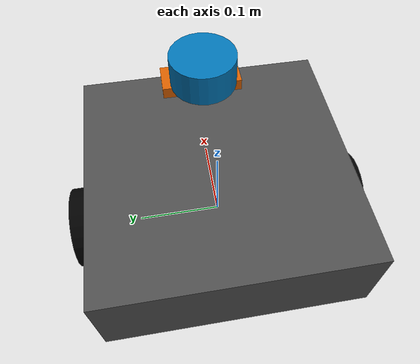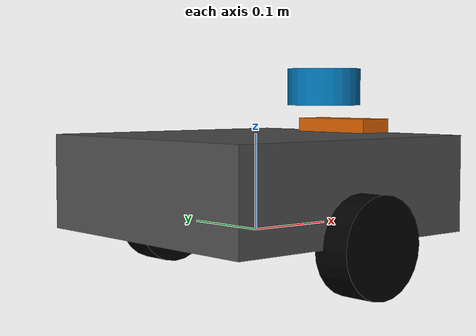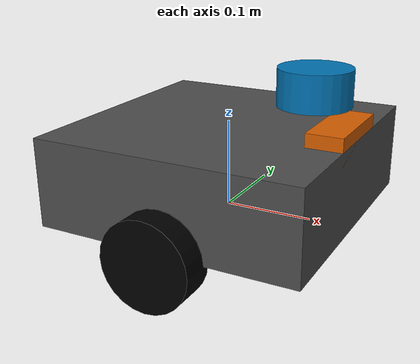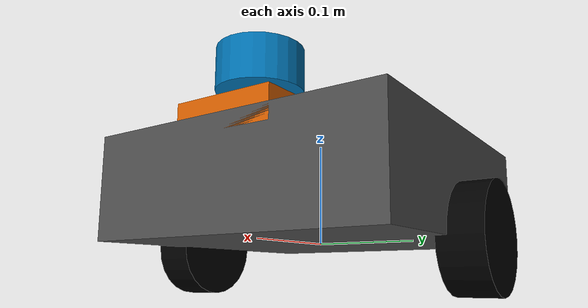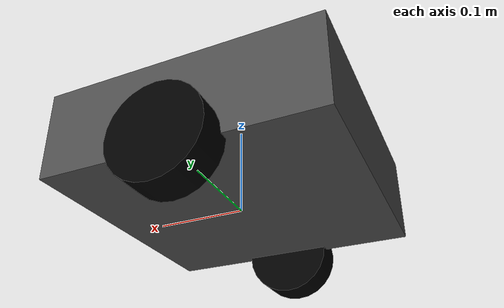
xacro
<?xml version="1.0"?>
<robot xmlns:xacro="http://ros.org/wiki/xacro" name="openbrain_sim_robot">

  <xacro:property name="wheel_radius" value="0.05"/>
  <xacro:property name="wheel_width"  value="0.04"/>
  <xacro:property name="wheel_y"      value="0.16"/>

  <link name="base_footprint"/>

  <joint name="base_to_footprint" type="fixed">
    <parent link="base_footprint"/>
    <child link="base_link"/>
    <origin xyz="0 0 ${wheel_radius}"/>
  </joint>

  <link name="base_link">
    <inertial><mass value="5.0"/><inertia ixx="0.05" iyy="0.05" izz="0.05" ixy="0" ixz="0" iyz="0"/></inertial>
    <visual><geometry><box size="0.30 0.30 0.10"/></geometry>
      <material name="grey"><color rgba="0.3 0.3 0.3 1"/></material></visual>
    <collision><geometry><box size="0.30 0.30 0.10"/></geometry></collision>
  </link>

  <xacro:macro name="wheel" params="prefix y">
    <link name="${prefix}_wheel">
      <inertial><mass value="0.5"/><inertia ixx="0.001" iyy="0.001" izz="0.001" ixy="0" ixz="0" iyz="0"/></inertial>
      <visual><geometry><cylinder radius="${wheel_radius}" length="${wheel_width}"/></geometry>
        <material name="black"><color rgba="0 0 0 1"/></material></visual>
      <collision><geometry><cylinder radius="${wheel_radius}" length="${wheel_width}"/></geometry></collision>
    </link>
    <joint name="${prefix}_wheel_joint" type="continuous">
      <parent link="base_link"/>
      <child link="${prefix}_wheel"/>
      <origin xyz="0 ${y} -0.05" rpy="-1.5708 0 0"/>
      <axis xyz="0 0 1"/>
    </joint>
  </xacro:macro>

  <xacro:wheel prefix="left"  y="${wheel_y}"/>
  <xacro:wheel prefix="right" y="-${wheel_y}"/>

  <!-- 2D lidar -->
  <link name="lidar_link"><inertial><mass value="0.1"/><inertia ixx="0.001" iyy="0.001" izz="0.001" ixy="0" ixz="0" iyz="0"/></inertial>
    <visual><geometry><cylinder radius="0.04" length="0.04"/></geometry></visual></link>
  <joint name="lidar_joint" type="fixed"><parent link="base_link"/><child link="lidar_link"/><origin xyz="0.10 0 0.10"/></joint>

  <!-- Depth camera (front) -->
  <link name="front_link"><visual><geometry><box size="0.04 0.10 0.03"/></geometry></visual></link>
  <joint name="front_joint" type="fixed"><parent link="base_link"/><child link="front_link"/><origin xyz="0.13 0 0.05"/></joint>

  <gazebo>
    <plugin filename="ignition-gazebo-diff-drive-system" name="ignition::gazebo::systems::DiffDrive">
      <left_joint>left_wheel_joint</left_joint>
      <right_joint>right_wheel_joint</right_joint>
      <wheel_separation>0.32</wheel_separation>
      <wheel_radius>${wheel_radius}</wheel_radius>
      <topic>cmd_vel</topic>
      <odom_topic>odom</odom_topic>
      <frame_id>odom</frame_id>
      <child_frame_id>base_link</child_frame_id>
      <odom_publish_frequency>30</odom_publish_frequency>
    </plugin>
    <plugin filename="ignition-gazebo-joint-state-publisher-system" name="ignition::gazebo::systems::JointStatePublisher">
      <topic>joint_states</topic>
    </plugin>
  </gazebo>

  <gazebo reference="lidar_link">
    <sensor name="lidar" type="gpu_lidar">
      <topic>scan</topic>
      <update_rate>10</update_rate>
      <ray>
        <scan><horizontal><samples>360</samples><resolution>1</resolution><min_angle>-3.14</min_angle><max_angle>3.14</max_angle></horizontal></scan>
        <range><min>0.10</min><max>10.0</max><resolution>0.01</resolution></range>
      </ray>
    </sensor>
  </gazebo>

  <gazebo reference="front_link">
    <sensor name="front_camera" type="rgbd_camera">
      <topic>camera/front</topic>
      <update_rate>15</update_rate>
      <camera>
        <horizontal_fov>1.05</horizontal_fov>
        <image><width>640</width><height>480</height></image>
        <clip><near>0.1</near><far>10.0</far></clip>
      </camera>
    </sensor>
  </gazebo>

</robot>
